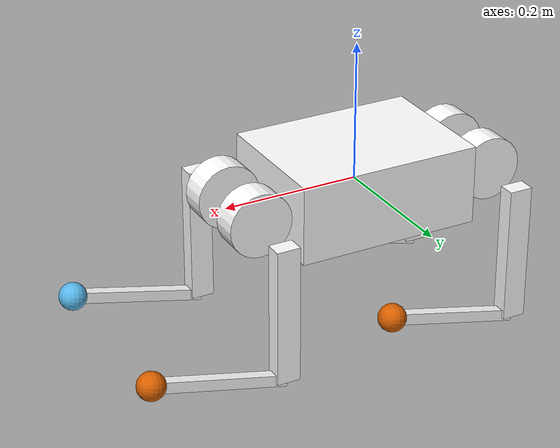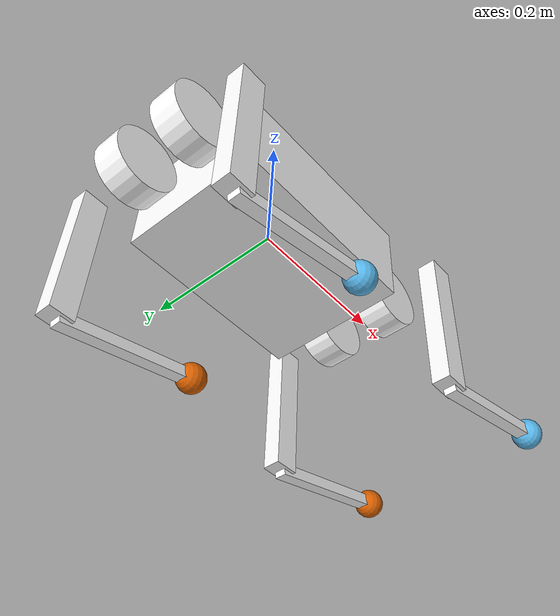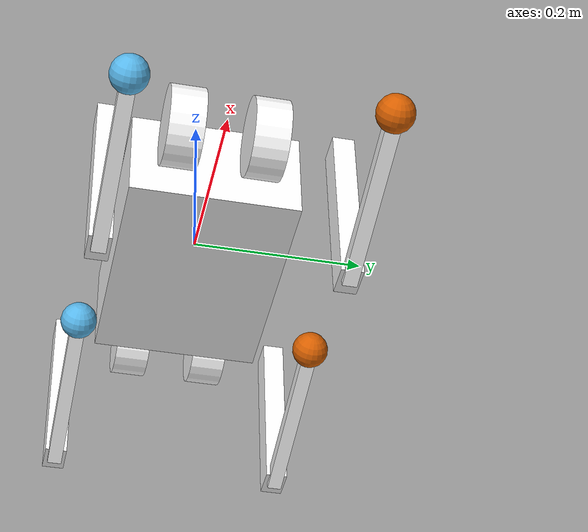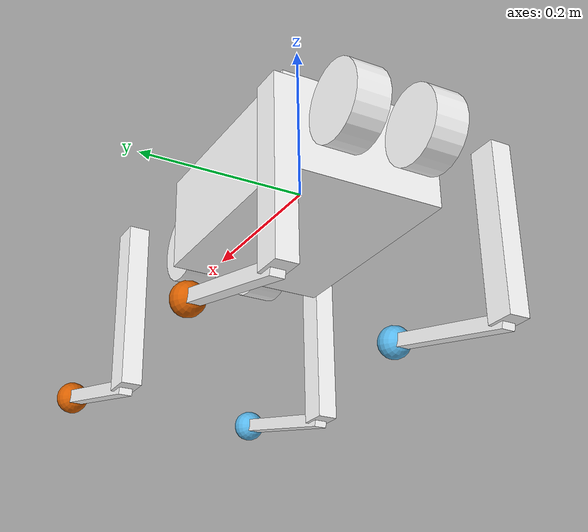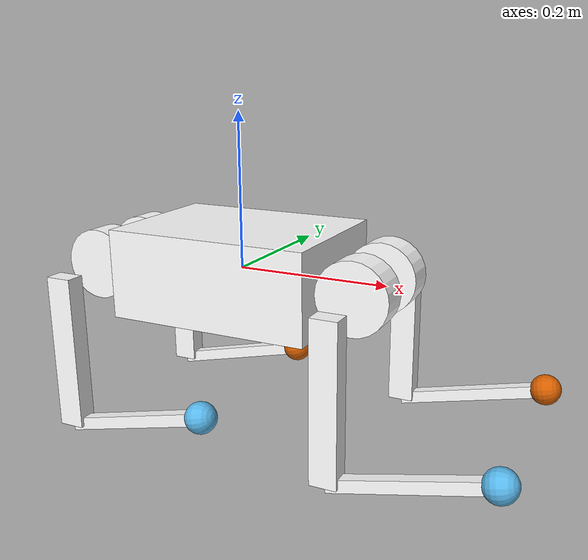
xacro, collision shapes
<?xml version="1.0" encoding="utf-8"?>
<!-- |    This document was autogenerated by xacro from robot.xacro                    | -->
<!-- |    EDITING THIS FILE BY HAND IS NOT RECOMMENDED                                 | -->
<robot
  name="a1">
  <link
    name="body">
    <inertial>
      <origin
        xyz="0.0 0.0041 -0.0005"
        rpy="0 0 0" />
      <mass
        value="6.0" />
      <inertia
        ixx="0.0158533"
        ixy="-3.66E-05"
        ixz="-6.11E-05"
        iyy="0.0377999"
        iyz="-2.75E-05"
        izz="0.0456542" />
    </inertial>
    <visual>
      <origin
        xyz="0 0 0"
        rpy="0 0 0" />
      <geometry>
        <mesh
          filename="package://a1_description/models/a1/meshes/trunk.dae" />
      </geometry>
      <material
        name="">
        <color
          rgba="1 1 1 1" />
      </material>
    </visual>
    <collision>
      <origin
        xyz="0 0 0"
        rpy="0 0 0" />
      <geometry>
        <box size="0.267 0.194 0.114" />
      </geometry>
    </collision>
  </link>
  <link
    name="imu_link">
    <inertial>
      <origin
        xyz="0 0 0"
        rpy="0 0 0" />
      <mass
        value="0.001" />
      <inertia
        ixx="0.0001"
        ixy="0"
        ixz="0"
        iyy="0.0001"
        iyz="0"
        izz="0.0001" />
    </inertial>
    <collision>
      <origin
        xyz="0 0 0"
        rpy="0 0 0" />
      <geometry>
        <box size="0.001 0.001 0.001" />
      </geometry>
    </collision>
  </link>
  <joint
    name="imu_joint"
    type="fixed">
    <origin
      xyz="0 0 0"
      rpy="0 0 0" />
    <parent
      link="body" />
    <child
      link="imu_link" />
    <axis
      xyz="0 0 0" />
  </joint>
  <link
    name="FL_hip">
    <inertial>
      <origin
        xyz="-0.003311 0.000635 3.1E-05"
        rpy="0 0 0" />
      <mass
        value="0.696" />
      <inertia
        ixx="0.000469246"
        ixy="-9.409E-06"
        ixz="-3.42E-07"
        iyy="0.00080749"
        iyz="-4.66E-07"
        izz="0.000552929" />
    </inertial>
    <visual>
      <origin
        xyz="0 0 0"
        rpy="0 0 0" />
      <geometry>
        <mesh
          filename="package://a1_description/models/a1/meshes/hip.dae" />
      </geometry>
      <material
        name="">
        <color
          rgba="1 1 1 1" />
      </material>
    </visual>
    <collision>
      <origin
        xyz="0 0 0"
        rpy="1.5707963267948966 0 0" />
      <geometry>
        <cylinder length="0.04" radius="0.046" />
      </geometry>
    </collision>
  </link>
  <joint
    name="8"
    type="revolute">
    <origin
      xyz="0.1805 0.047 0"
      rpy="0 0 0" />
    <parent
      link="body" />
    <child
      link="FL_hip" />
    <axis
      xyz="1 0 0" />
    <dynamics
      damping="0.01"
      friction="0.2" />
    <limit
      lower="-0.802851455917"
      upper="0.802851455917"
      effort="33.5"
      velocity="21" />
  </joint>
  <link
    name="FL_thigh">
    <inertial>
      <origin
        xyz="-0.003237 -0.022327 -0.027326"
        rpy="0 0 0" />
      <mass
        value="1.013" />
      <inertia
        ixx="0.005529065"
        ixy="4.825E-06"
        ixz="0.000343869"
        iyy="0.005139339"
        iyz="2.2448E-05"
        izz="0.001367788" />
    </inertial>
    <visual>
      <origin
        xyz="0 0 0"
        rpy="0 0 0" />
      <geometry>
        <mesh
          filename="package://a1_description/models/a1/meshes/thigh.dae" />
      </geometry>
      <material
        name="">
        <color
          rgba="1 1 1 1" />
      </material>
    </visual>
    <collision>
      <origin
        xyz="0 0 -0.1"
        rpy="0 1.5707963267948966 0" />
      <geometry>
        <box size="0.2 0.0245 0.034" />
      </geometry>
    </collision>
  </link>
  <joint
    name="0"
    type="revolute">
    <origin
      xyz="0 0.0838 0"
      rpy="0 0 0" />
    <parent
      link="FL_hip" />
    <child
      link="FL_thigh" />
    <axis
      xyz="0 1 0" />
    <dynamics
      damping="0.01"
      friction="0.2" />
    <limit
      lower="-1.0471975512"
      upper="4.18879020479"
      effort="33.5"
      velocity="21" />
  </joint>
  <link
    name="FL_calf">
    <inertial>
      <origin
        xyz="0.006435 0.0 -0.107388"
        rpy="0 0 0" />
      <mass
        value="0.166" />
      <inertia
        ixx="0.002997972"
        ixy="0.0"
        ixz="-0.000141163"
        iyy="0.003014022"
        iyz="0.0"
        izz="3.2426E-05" />
    </inertial>
    <visual>
      <origin
        xyz="0 0 0"
        rpy="0 0 0" />
      <geometry>
        <mesh
          filename="package://a1_description/models/a1/meshes/calf.dae" />
      </geometry>
      <material
        name="">
        <color
          rgba="1 1 1 1" />
      </material>
    </visual>
    <collision>
      <origin
        xyz="0 0 -0.1"
        rpy="0 1.5707963267948966 0" />
      <geometry>
        <box size="0.2 0.016 0.016" />
      </geometry>
    </collision>
  </link>
  <joint
    name="1"
    type="revolute">
    <origin
      xyz="0 0 -0.2"
      rpy="0 0 0" />
    <parent
      link="FL_thigh" />
    <child
      link="FL_calf" />
    <axis
      xyz="0 1 0" />
    <dynamics
      damping="0.01"
      friction="0.2" />
    <limit
      lower="-2.69653369433"
      upper="-0.916297857297"
      effort="33.5"
      velocity="21" />
  </joint>
  <link
    name="FL_foot">
    <inertial>
      <origin
        xyz="0 0 0"
        rpy="0 0 0" />
      <mass
        value="0.06" />
      <inertia
        ixx="9.6E-06"
        ixy="0.0"
        ixz="0.0"
        iyy="9.6E-06"
        iyz="0.0"
        izz="9.6E-06" />
    </inertial>
    <collision>
      <origin
        xyz="0 0 0"
        rpy="0 0 0" />
      <geometry>
        <sphere radius="0.02" />
      </geometry>
    </collision>
  </link>
  <joint
    name="FL_foot_fixed"
    type="fixed">
    <origin
      xyz="0 0 -0.2"
      rpy="0 0 0" />
    <parent
      link="FL_calf" />
    <child
      link="FL_foot" />
  </joint>
  <link
    name="FR_hip">
    <inertial>
      <origin
        xyz="-0.003311 -0.000635 3.1E-05"
        rpy="0 0 0" />
      <mass
        value="0.696" />
      <inertia
        ixx="0.000469246"
        ixy="9.409E-06"
        ixz="-3.42E-07"
        iyy="0.00080749"
        iyz="4.66E-07"
        izz="0.000552929" />
    </inertial>
    <visual>
      <origin
        xyz="0 0 0"
        rpy="3.14159265359 0 0" />
      <geometry>
        <mesh
          filename="package://a1_description/models/a1/meshes/hip.dae" />
      </geometry>
      <material
        name="">
        <color
          rgba="1 1 1 1" />
      </material>
    </visual>
    <collision>
      <origin
        xyz="0 0 0"
        rpy="1.5707963267948966 0 0" />
      <geometry>
        <cylinder length="0.04" radius="0.046" />
      </geometry>
    </collision>
  </link>
  <joint
    name="10"
    type="revolute">
    <origin
      xyz="0.1805 -0.047 0"
      rpy="0 0 0" />
    <parent
      link="body" />
    <child
      link="FR_hip" />
    <axis
      xyz="1 0 0" />
    <dynamics
      damping="0.01"
      friction="0.2" />
    <limit
      lower="-0.802851455917"
      upper="0.802851455917"
      effort="33.5"
      velocity="21" />
  </joint>
  <link
    name="FR_thigh">
    <inertial>
      <origin
        xyz="-0.003237 0.022327 -0.027326"
        rpy="0 0 0" />
      <mass
        value="1.013" />
      <inertia
        ixx="0.005529065"
        ixy="-4.825E-06"
        ixz="0.000343869"
        iyy="0.005139339"
        iyz="-2.2448E-05"
        izz="0.001367788" />
    </inertial>
    <visual>
      <origin
        xyz="0 0 0"
        rpy="0 0 0" />
      <geometry>
        <mesh
          filename="package://a1_description/models/a1/meshes/thigh_mirror.dae" />
      </geometry>
      <material
        name="">
        <color
          rgba="1 1 1 1" />
      </material>
    </visual>
    <collision>
      <origin
        xyz="0 0 -0.1"
        rpy="0 1.5707963267948966 0" />
      <geometry>
        <box size="0.2 0.0245 0.034" />
      </geometry>
    </collision>
  </link>
  <joint
    name="4"
    type="revolute">
    <origin
      xyz="0 -0.0838 0"
      rpy="0 0 0" />
    <parent
      link="FR_hip" />
    <child
      link="FR_thigh" />
    <axis
      xyz="0 1 0" />
    <dynamics
      damping="0.01"
      friction="0.2" />
    <limit
      lower="-1.0471975512"
      upper="4.18879020479"
      effort="33.5"
      velocity="21" />
  </joint>
  <link
    name="FR_calf">
    <inertial>
      <origin
        xyz="0.006435 0.0 -0.107388"
        rpy="0 0 0" />
      <mass
        value="0.166" />
      <inertia
        ixx="0.002997972"
        ixy="0.0"
        ixz="-0.000141163"
        iyy="0.003014022"
        iyz="0.0"
        izz="3.2426E-05" />
    </inertial>
    <visual>
      <origin
        xyz="0 0 0"
        rpy="0 0 0" />
      <geometry>
        <mesh
          filename="package://a1_description/models/a1/meshes/calf.dae" />
      </geometry>
      <material
        name="">
        <color
          rgba="1 1 1 1" />
      </material>
    </visual>
    <collision>
      <origin
        xyz="0 0 -0.1"
        rpy="0 1.5707963267948966 0" />
      <geometry>
        <box size="0.2 0.016 0.016" />
      </geometry>
    </collision>
  </link>
  <joint
    name="5"
    type="revolute">
    <origin
      xyz="0 0 -0.2"
      rpy="0 0 0" />
    <parent
      link="FR_thigh" />
    <child
      link="FR_calf" />
    <axis
      xyz="0 1 0" />
    <dynamics
      damping="0.01"
      friction="0.2" />
    <limit
      lower="-2.69653369433"
      upper="-0.916297857297"
      effort="33.5"
      velocity="21" />
  </joint>
  <link
    name="FR_foot">
    <inertial>
      <origin
        xyz="0 0 0"
        rpy="0 0 0" />
      <mass
        value="0.06" />
      <inertia
        ixx="9.6E-06"
        ixy="0.0"
        ixz="0.0"
        iyy="9.6E-06"
        iyz="0.0"
        izz="9.6E-06" />
    </inertial>
    <collision>
      <origin
        xyz="0 0 0"
        rpy="0 0 0" />
      <geometry>
        <sphere radius="0.02" />
      </geometry>
    </collision>
  </link>
  <joint
    name="FR_foot_fixed"
    type="fixed">
    <origin
      xyz="0 0 -0.2"
      rpy="0 0 0" />
    <parent
      link="FR_calf" />
    <child
      link="FR_foot" />
  </joint>
  <link
    name="RL_hip">
    <inertial>
      <origin
        xyz="0.003311 0.000635 3.1E-05"
        rpy="0 0 0" />
      <mass
        value="0.696" />
      <inertia
        ixx="0.000469246"
        ixy="9.409E-06"
        ixz="3.42E-07"
        iyy="0.00080749"
        iyz="-4.66E-07"
        izz="0.000552929" />
    </inertial>
    <visual>
      <origin
        xyz="0 0 0"
        rpy="0 3.14159265359 0" />
      <geometry>
        <mesh
          filename="package://a1_description/models/a1/meshes/hip.dae" />
      </geometry>
      <material
        name="">
        <color
          rgba="1 1 1 1" />
      </material>
    </visual>
    <collision>
      <origin
        xyz="0 0 0"
        rpy="1.5707963267948966 0 0" />
      <geometry>
        <cylinder length="0.04" radius="0.046" />
      </geometry>
    </collision>
  </link>
  <joint
    name="9"
    type="revolute">
    <origin
      xyz="-0.1805 0.047 0"
      rpy="0 0 0" />
    <parent
      link="body" />
    <child
      link="RL_hip" />
    <axis
      xyz="1 0 0" />
    <dynamics
      damping="0.01"
      friction="0.2" />
    <limit
      lower="-0.802851455917"
      upper="0.802851455917"
      effort="33.5"
      velocity="21" />
  </joint>
  <link
    name="RL_thigh">
    <inertial>
      <origin
        xyz="-0.003237 -0.022327 -0.027326"
        rpy="0 0 0" />
      <mass
        value="1.013" />
      <inertia
        ixx="0.005529065"
        ixy="4.825E-06"
        ixz="0.000343869"
        iyy="0.005139339"
        iyz="2.2448E-05"
        izz="0.001367788" />
    </inertial>
    <visual>
      <origin
        xyz="0 0 0"
        rpy="0 0 0" />
      <geometry>
        <mesh
          filename="package://a1_description/models/a1/meshes/thigh.dae" />
      </geometry>
      <material
        name="">
        <color
          rgba="1 1 1 1" />
      </material>
    </visual>
    <collision>
      <origin
        xyz="0 0 -0.1"
        rpy="0 1.5707963267948966 0" />
      <geometry>
        <box size="0.2 0.0245 0.034" />
      </geometry>
    </collision>
  </link>
  <joint
    name="2"
    type="revolute">
    <origin
      xyz="0 0.0838 0"
      rpy="0 0 0" />
    <parent
      link="RL_hip" />
    <child
      link="RL_thigh" />
    <axis
      xyz="0 1 0" />
    <dynamics
      damping="0.01"
      friction="0.2" />
    <limit
      lower="-1.0471975512"
      upper="4.18879020479"
      effort="33.5"
      velocity="21" />
  </joint>
  <link
    name="RL_calf">
    <inertial>
      <origin
        xyz="0.006435 0.0 -0.107388"
        rpy="0 0 0" />
      <mass
        value="0.166" />
      <inertia
        ixx="0.002997972"
        ixy="0.0"
        ixz="-0.000141163"
        iyy="0.003014022"
        iyz="0.0"
        izz="3.2426E-05" />
    </inertial>
    <visual>
      <origin
        xyz="0 0 0"
        rpy="0 0 0" />
      <geometry>
        <mesh
          filename="package://a1_description/models/a1/meshes/calf.dae" />
      </geometry>
      <material
        name="">
        <color
          rgba="1 1 1 1" />
      </material>
    </visual>
    <collision>
      <origin
        xyz="0 0 -0.1"
        rpy="0 1.5707963267948966 0" />
      <geometry>
        <box size="0.2 0.016 0.016" />
      </geometry>
    </collision>
  </link>
  <joint
    name="3"
    type="revolute">
    <origin
      xyz="0 0 -0.2"
      rpy="0 0 0" />
    <parent
      link="RL_thigh" />
    <child
      link="RL_calf" />
    <axis
      xyz="0 1 0" />
    <dynamics
      damping="0.01"
      friction="0.2" />
    <limit
      lower="-2.69653369433"
      upper="-0.916297857297"
      effort="33.5"
      velocity="21" />
  </joint>
  <link
    name="RL_foot">
    <inertial>
      <origin
        xyz="0 0 0"
        rpy="0 0 0" />
      <mass
        value="0.06" />
      <inertia
        ixx="9.6E-06"
        ixy="0.0"
        ixz="0.0"
        iyy="9.6E-06"
        iyz="0.0"
        izz="9.6E-06" />
    </inertial>
    <collision>
      <origin
        xyz="0 0 0"
        rpy="0 0 0" />
      <geometry>
        <sphere radius="0.02" />
      </geometry>
    </collision>
  </link>
  <joint
    name="RL_foot_fixed"
    type="fixed">
    <origin
      xyz="0 0 -0.2"
      rpy="0 0 0" />
    <parent
      link="RL_calf" />
    <child
      link="RL_foot" />
  </joint>
  <link
    name="RR_hip">
    <inertial>
      <origin
        xyz="0.003311 -0.000635 3.1E-05"
        rpy="0 0 0" />
      <mass
        value="0.696" />
      <inertia
        ixx="0.000469246"
        ixy="-9.409E-06"
        ixz="3.42E-07"
        iyy="0.00080749"
        iyz="4.66E-07"
        izz="0.000552929" />
    </inertial>
    <visual>
      <origin
        xyz="0 0 0"
        rpy="3.14159265359 3.14159265359 0" />
      <geometry>
        <mesh
          filename="package://a1_description/models/a1/meshes/hip.dae" />
      </geometry>
      <material
        name="">
        <color
          rgba="1 1 1 1" />
      </material>
    </visual>
    <collision>
      <origin
        xyz="0 0 0"
        rpy="1.5707963267948966 0 0" />
      <geometry>
        <cylinder length="0.04" radius="0.046" />
      </geometry>
    </collision>
  </link>
  <joint
    name="11"
    type="revolute">
    <origin
      xyz="-0.1805 -0.047 0"
      rpy="0 0 0" />
    <parent
      link="body" />
    <child
      link="RR_hip" />
    <axis
      xyz="1 0 0" />
    <dynamics
      damping="0.01"
      friction="0.2" />
    <limit
      lower="-0.802851455917"
      upper="0.802851455917"
      effort="33.5"
      velocity="21" />
  </joint>
  <link
    name="RR_thigh">
    <inertial>
      <origin
        xyz="-0.003237 0.022327 -0.027326"
        rpy="0 0 0" />
      <mass
        value="1.013" />
      <inertia
        ixx="0.005529065"
        ixy="-4.825E-06"
        ixz="0.000343869"
        iyy="0.005139339"
        iyz="-2.2448E-05"
        izz="0.001367788" />
    </inertial>
    <visual>
      <origin
        xyz="0 0 0"
        rpy="0 0 0" />
      <geometry>
        <mesh
          filename="package://a1_description/models/a1/meshes/thigh_mirror.dae" />
      </geometry>
      <material
        name="">
        <color
          rgba="1 1 1 1" />
      </material>
    </visual>
    <collision>
      <origin
        xyz="0 0 -0.1"
        rpy="0 1.5707963267948966 0" />
      <geometry>
        <box size="0.2 0.0245 0.034" />
      </geometry>
    </collision>
  </link>
  <joint
    name="6"
    type="revolute">
    <origin
      xyz="0 -0.0838 0"
      rpy="0 0 0" />
    <parent
      link="RR_hip" />
    <child
      link="RR_thigh" />
    <axis
      xyz="0 1 0" />
    <dynamics
      damping="0.01"
      friction="0.2" />
    <limit
      lower="-1.0471975512"
      upper="4.18879020479"
      effort="33.5"
      velocity="21" />
  </joint>
  <link
    name="RR_calf">
    <inertial>
      <origin
        xyz="0.006435 0.0 -0.107388"
        rpy="0 0 0" />
      <mass
        value="0.166" />
      <inertia
        ixx="0.002997972"
        ixy="0.0"
        ixz="-0.000141163"
        iyy="0.003014022"
        iyz="0.0"
        izz="3.2426E-05" />
    </inertial>
    <visual>
      <origin
        xyz="0 0 0"
        rpy="0 0 0" />
      <geometry>
        <mesh
          filename="package://a1_description/models/a1/meshes/calf.dae" />
      </geometry>
      <material
        name="">
        <color
          rgba="1 1 1 1" />
      </material>
    </visual>
    <collision>
      <origin
        xyz="0 0 -0.1"
        rpy="0 1.5707963267948966 0" />
      <geometry>
        <box size="0.2 0.016 0.016" />
      </geometry>
    </collision>
  </link>
  <joint
    name="7"
    type="revolute">
    <origin
      xyz="0 0 -0.2"
      rpy="0 0 0" />
    <parent
      link="RR_thigh" />
    <child
      link="RR_calf" />
    <axis
      xyz="0 1 0" />
    <dynamics
      damping="0.01"
      friction="0.2" />
    <limit
      lower="-2.69653369433"
      upper="-0.916297857297"
      effort="33.5"
      velocity="21" />
  </joint>
  <link
    name="RR_foot">
    <inertial>
      <origin
        xyz="0 0 0"
        rpy="0 0 0" />
      <mass
        value="0.06" />
      <inertia
        ixx="9.6E-06"
        ixy="0.0"
        ixz="0.0"
        iyy="9.6E-06"
        iyz="0.0"
        izz="9.6E-06" />
    </inertial>
    <collision>
      <origin
        xyz="0 0 0"
        rpy="0 0 0" />
      <geometry>
        <sphere radius="0.02" />
      </geometry>
    </collision>
  </link>
  <joint
    name="RR_foot_fixed"
    type="fixed">
    <origin
      xyz="0 0 -0.2"
      rpy="0 0 0" />
    <parent
      link="RR_calf" />
    <child
      link="RR_foot" />
  </joint>
  <ros2_control name="GazeboSimSystem" type="system">
    <hardware>
      <plugin>gz_ros2_control/GazeboSimSystem</plugin>
    </hardware>
    <joint name="0">
      <command_interface name="effort" />
      <state_interface name="velocity" />
      <state_interface name="position" />
    </joint>
    <joint name="1">
      <command_interface name="effort" />
      <state_interface name="velocity" />
      <state_interface name="position" />
    </joint>
    <joint name="2">
      <command_interface name="effort" />
      <state_interface name="velocity" />
      <state_interface name="position" />
    </joint>
    <joint name="3">
      <command_interface name="effort" />
      <state_interface name="velocity" />
      <state_interface name="position" />
    </joint>
    <joint name="4">
      <command_interface name="effort" />
      <state_interface name="velocity" />
      <state_interface name="position" />
    </joint>
    <joint name="5">
      <command_interface name="effort" />
      <state_interface name="velocity" />
      <state_interface name="position" />
    </joint>
    <joint name="6">
      <command_interface name="effort" />
      <state_interface name="velocity" />
      <state_interface name="position" />
    </joint>
    <joint name="7">
      <command_interface name="effort" />
      <state_interface name="velocity" />
      <state_interface name="position" />
    </joint>
    <joint name="8">
      <command_interface name="effort" />
      <state_interface name="velocity" />
      <state_interface name="position" />
    </joint>
    <joint name="9">
      <command_interface name="effort" />
      <state_interface name="velocity" />
      <state_interface name="position" />
    </joint>
    <joint name="10">
      <command_interface name="effort" />
      <state_interface name="velocity" />
      <state_interface name="position" />
    </joint>
    <joint name="11">
      <command_interface name="effort" />
      <state_interface name="velocity" />
      <state_interface name="position" />
    </joint>
  </ros2_control>

  <link name="cmu_text">
    <visual>
      <origin xyz="0 0 0" rpy="0 0 0" />
      <geometry>
        <mesh filename="package://objects_description/models/cmu_text/meshes/Spirit40_CMU_Text_transformed.stl" scale="0.8 0.5 0.8" />
      </geometry>
    </visual>
    <inertial>
      <mass value="0.0001" />
      <inertia ixx="1e-08" ixy="0" ixz="0" iyy="1e-08" iyz="0" izz="1e-08" />
    </inertial>
  </link>
  <joint name="cmu_text_joint" type="fixed">
    <parent link="body" />
    <child link="cmu_text" />
    <origin xyz="0 0 -0.005" rpy="0 0 0" />
  </joint>
</robot>
